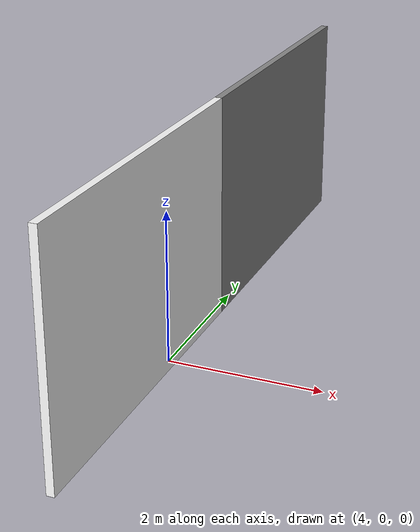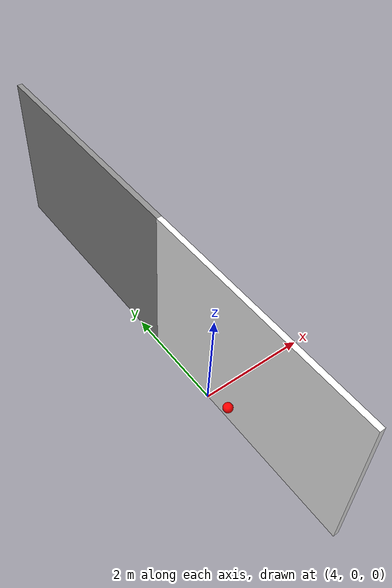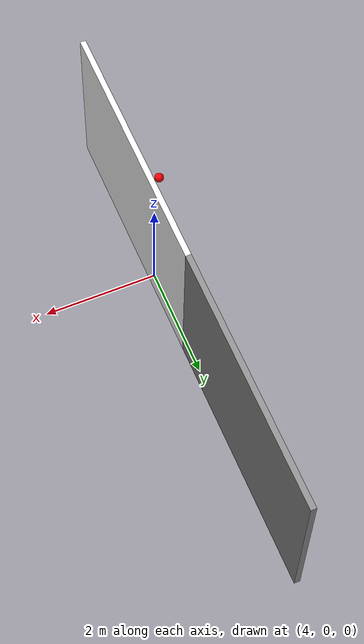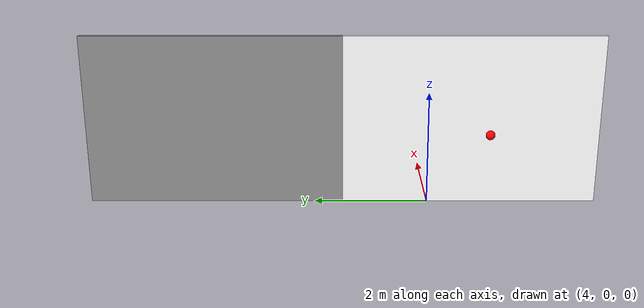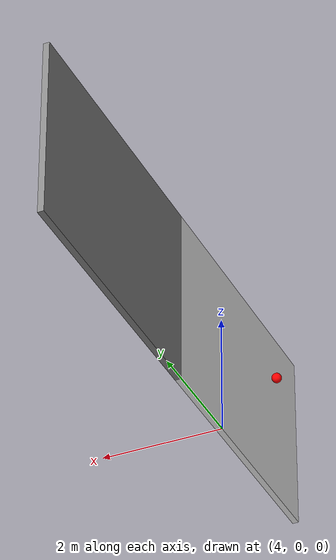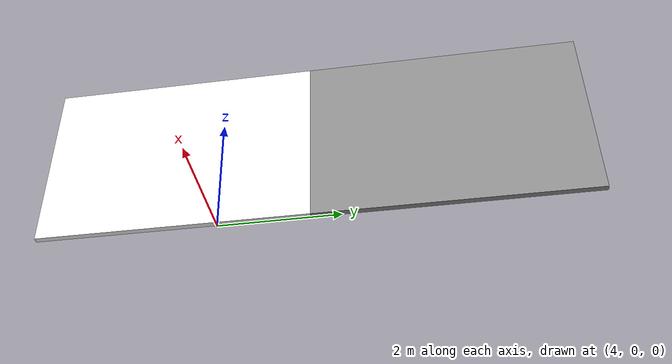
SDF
<?xml version="1.0"?>
<sdf version="1.9">
  <model name="reef_vision_scene">
    <static>true</static>
      <link name="wall_rich"><pose>4.05 -0.75 1.5 0 0 0</pose><collision name="wall_rich_collision"><geometry><box><size>0.1 4.5 3.0</size></box></geometry></collision><visual name="wall_rich_visual"><geometry><box><size>0.1 4.5 3.0</size></box></geometry><material><diffuse>1 1 1 1</diffuse><pbr><metal><albedo_map>model://reef_vision_scene/materials/textures/texture_rich.png</albedo_map></metal></pbr></material></visual></link>
      <link name="wall_plain"><pose>4.05 3.75 1.5 0 0 0</pose><collision name="wall_plain_collision"><geometry><box><size>0.1 4.5 3.0</size></box></geometry></collision><visual name="wall_plain_visual"><geometry><box><size>0.1 4.5 3.0</size></box></geometry><material><diffuse>0.55 0.55 0.55 1</diffuse><ambient>0.55 0.55 0.55 1</ambient></material></visual></link>
      <link name="target"><pose>3.5 -1.0 1.4 0 0 0</pose><visual name="target_visual"><geometry><sphere><radius>0.08</radius></sphere></geometry><material><diffuse>1 0 0 1</diffuse><ambient>1 0 0 1</ambient><emissive>1 0 0 1</emissive></material></visual></link>
  </model>
</sdf>
